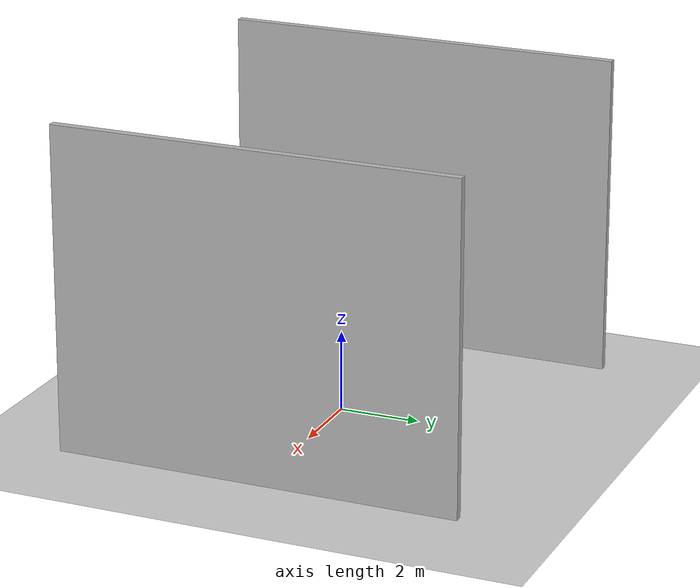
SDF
<?xml version="1.0" ?>
<sdf version="1.6">
    <world name="warehouse_world">

        <plugin filename="gz-sim-physics-system" name="gz::sim::systems::Physics"/>
        <plugin filename="gz-sim-user-commands-system" name="gz::sim::systems::UserCommands"/>
        <plugin filename="gz-sim-scene-broadcaster-system" name="gz::sim::systems::SceneBroadcaster"/>

        <plugin filename="gz-sim-sensors-system" name="gz::sim::systems::Sensors">
            <render_engine>ogre2</render_engine>
        </plugin>
        <physics name="1ms" type="ignored">
            <max_step_size>0.001</max_step_size>
            <real_time_factor>1.0</real_time_factor>
        </physics>

        <light type="directional" name="sun">
            <cast_shadows>true</cast_shadows>
            <pose>0 0 10 0 0 0</pose>
            <diffuse>0.8 0.8 0.8 1</diffuse>
            <specular>0.2 0.2 0.2 1</specular>
            <direction>-0.5 0.1 -0.9</direction>
        </light>

        <model name="ground_plane">
            <static>true</static>
            <link name="link">
                <collision name="collision">
                    <geometry><plane><normal>0 0 1</normal><size>100 100</size></plane></geometry>
                </collision>
                <visual name="visual">
                    <geometry><plane><normal>0 0 1</normal><size>100 100</size></plane></geometry>
                    <material><ambient>0.8 0.8 0.8 1</ambient><diffuse>0.8 0.8 0.8 1</diffuse></material>
                </visual>
            </link>
        </model>

        <model name="perimeter_walls">
            <static>true</static>
            <link name="link">
                <collision name="north">
                    <pose>5 0 4.05 0 0 0</pose>
                    <geometry><box><size>0.2 10 8</size></box></geometry>
                </collision>
                <visual name="north_vis">
                    <pose>5 0 4.05 0 0 0</pose>
                    <geometry><box><size>0.2 10 8</size></box></geometry>
                </visual>
                <collision name="south">
                    <pose>-5 0 4.05 0 0 0</pose>
                    <geometry><box><size>0.2 10 8</size></box></geometry>
                </collision>
                <visual name="south_vis">
                    <pose>-5 0 4.05 0 0 0</pose>
                    <geometry><box><size>0.2 10 8</size></box></geometry>
                </visual>
            </link>
        </model>

    </world>
</sdf>
